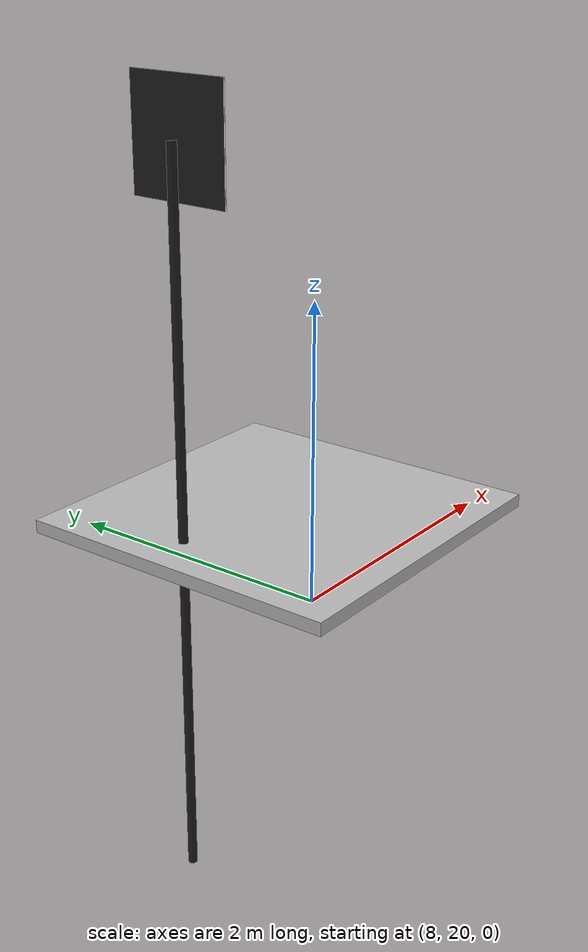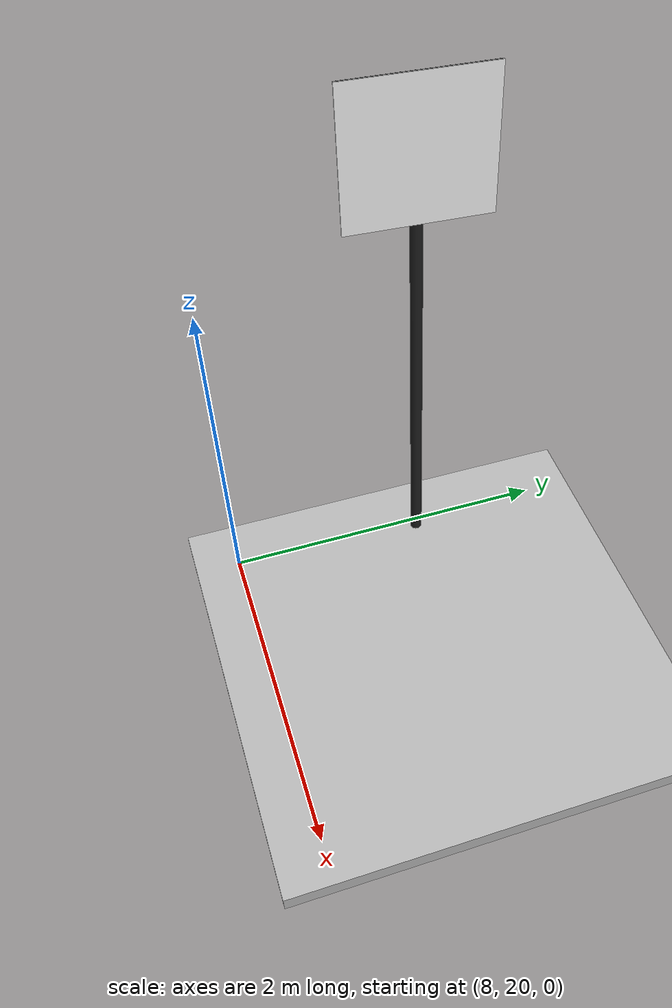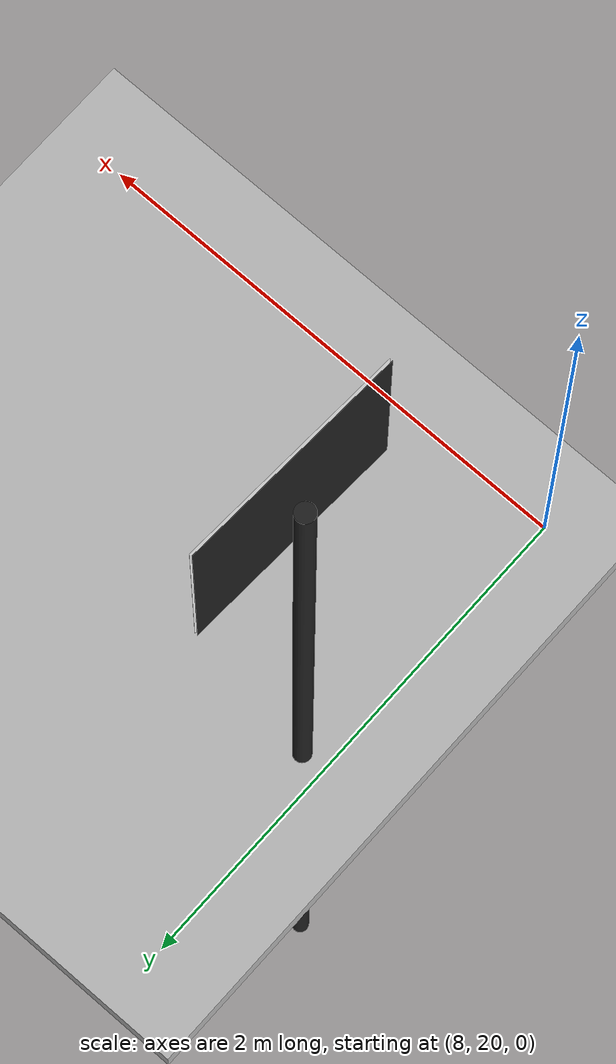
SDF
<sdf version="1.7">
 <world name="default">
  <model name="rightsign">
   <link name="link_3">
    <pose>0.1 0 2.75 0 -1.5707 0</pose>
    <inertial>
     <inertia><ixx>0</ixx><ixy>0</ixy><ixz>0</ixz><iyy>0</iyy><iyz>0</iyz><izz>0</izz></inertia>
     <mass>0</mass>
    </inertial>
    <visual name="visual">
     <pose>0 0 0 0 1.5707 0</pose>
     <geometry><box><size>0.001 0.8 0.8</size></box></geometry>
     <material>
      <script><uri>file://media/materials/scripts/turn_right.material</uri><name>turn_right/material</name></script>
      <shader type="pixel"><normal_map>__default__</normal_map></shader>
      <ambient>1 1 1 1</ambient>
      <diffuse>1 1 1 1</diffuse>
      <specular>0.03 0.03 0.03 1</specular>
      <emissive>0 0 0 1</emissive>
      <lighting>0</lighting>
     </material>
    </visual>
    <collision name="collision">
     <geometry><box><size>0.001 0.8 0.8</size></box></geometry>
     <surface>
      <friction>
       <ode><mu>1</mu><mu2>1</mu2><fdir1>0 0 0</fdir1><slip1>0</slip1><slip2>0</slip2></ode>
       <torsional>
        <coefficient>1</coefficient>
        <patch_radius>0</patch_radius>
        <surface_radius>0</surface_radius>
        <use_patch_radius>1</use_patch_radius>
        <ode><slip>0</slip></ode>
       </torsional>
      </friction>
      <bounce><restitution_coefficient>0</restitution_coefficient><threshold>1e+06</threshold></bounce>
      <contact>
       <collide_without_contact>0</collide_without_contact>
       <collide_without_contact_bitmask>1</collide_without_contact_bitmask>
       <collide_bitmask>1</collide_bitmask>
       <ode>
        <soft_cfm>0</soft_cfm>
        <soft_erp>0.2</soft_erp>
        <kp>1e+13</kp>
        <kd>1</kd>
        <max_vel>0.01</max_vel>
        <min_depth>0</min_depth>
       </ode>
       <bullet>
        <split_impulse>1</split_impulse>
        <split_impulse_penetration_threshold>-0.01</split_impulse_penetration_threshold>
        <soft_cfm>0</soft_cfm>
        <soft_erp>0.2</soft_erp>
        <kp>1e+13</kp>
        <kd>1</kd>
       </bullet>
      </contact>
     </surface>
    </collision>
   </link>
   <link name="link_0">
    <inertial>
     <mass>0.0276171</mass>
     <inertia>
      <ixx>0.0566012</ixx>
      <ixy>0</ixy>
      <ixz>0</ixz>
      <iyy>0.0566012</iyy>
      <iyz>0</iyz>
      <izz>1.919e-05</izz>
     </inertia>
    </inertial>
    <pose>0.16 0 0 0 -0 0</pose>
    <visual name="visual">
     <geometry><cylinder><radius>0.035</radius><length>5.5</length></cylinder></geometry>
     <material>
      <lighting>1</lighting>
      <script><uri>file://media/materials/scripts/gazebo.material</uri><name>Gazebo/Black</name></script>
      <shader type="pixel"><normal_map>__default__</normal_map></shader>
      <emissive>0 0 0 1</emissive>
      <ambient>0.3 0.3 0.3 1</ambient>
      <diffuse>0.7 0.7 0.7 1</diffuse>
      <specular>0.01 0.01 0.01 1</specular>
     </material>
    </visual>
    <collision name="collision">
     <geometry><cylinder><radius>0.037282</radius><length>4.95881</length></cylinder></geometry>
     <surface>
      <friction>
       <ode><mu>1</mu><mu2>1</mu2><fdir1>0 0 0</fdir1><slip1>0</slip1><slip2>0</slip2></ode>
       <torsional>
        <coefficient>1</coefficient>
        <patch_radius>0</patch_radius>
        <surface_radius>0</surface_radius>
        <use_patch_radius>1</use_patch_radius>
        <ode><slip>0</slip></ode>
       </torsional>
      </friction>
      <bounce><restitution_coefficient>0</restitution_coefficient><threshold>1e+06</threshold></bounce>
      <contact>
       <collide_without_contact>0</collide_without_contact>
       <collide_without_contact_bitmask>1</collide_without_contact_bitmask>
       <collide_bitmask>1</collide_bitmask>
       <ode>
        <soft_cfm>0</soft_cfm>
        <soft_erp>0.2</soft_erp>
        <kp>1e+13</kp>
        <kd>1</kd>
        <max_vel>0.01</max_vel>
        <min_depth>0</min_depth>
       </ode>
       <bullet>
        <split_impulse>1</split_impulse>
        <split_impulse_penetration_threshold>-0.01</split_impulse_penetration_threshold>
        <soft_cfm>0</soft_cfm>
        <soft_erp>0.2</soft_erp>
        <kp>1e+13</kp>
        <kd>1</kd>
       </bullet>
      </contact>
     </surface>
    </collision>
   </link>
   <link name="link_3_clone">
    <pose>0.110001 0 2.75 0 -1.5707 0</pose>
    <inertial>
     <inertia><ixx>0</ixx><ixy>0</ixy><ixz>0</ixz><iyy>0</iyy><iyz>0</iyz><izz>0</izz></inertia>
     <mass>0</mass>
    </inertial>
    <visual name="visual">
     <pose>0 0 0 0 1.5707 0</pose>
     <geometry><box><size>0.001 0.8 0.8</size></box></geometry>
     <material>
      <script><uri>file://media/materials/scripts/turn_right.material</uri><name>Gazebo/Black</name></script>
      <shader type="pixel"><normal_map>__default__</normal_map></shader>
      <ambient>1 1 1 1</ambient>
      <diffuse>1 1 1 1</diffuse>
      <specular>0.03 0.03 0.03 1</specular>
      <emissive>0 0 0 1</emissive>
      <lighting>0</lighting>
     </material>
    </visual>
    <collision name="collision">
     <geometry><box><size>0.001 0.8 0.8</size></box></geometry>
     <surface>
      <friction>
       <ode><mu>1</mu><mu2>1</mu2><fdir1>0 0 0</fdir1><slip1>0</slip1><slip2>0</slip2></ode>
       <torsional>
        <coefficient>1</coefficient>
        <patch_radius>0</patch_radius>
        <surface_radius>0</surface_radius>
        <use_patch_radius>1</use_patch_radius>
        <ode><slip>0</slip></ode>
       </torsional>
      </friction>
      <bounce><restitution_coefficient>0</restitution_coefficient><threshold>1e+06</threshold></bounce>
      <contact>
       <collide_without_contact>0</collide_without_contact>
       <collide_without_contact_bitmask>1</collide_without_contact_bitmask>
       <collide_bitmask>1</collide_bitmask>
       <ode>
        <soft_cfm>0</soft_cfm>
        <soft_erp>0.2</soft_erp>
        <kp>1e+13</kp>
        <kd>1</kd>
        <max_vel>0.01</max_vel>
        <min_depth>0</min_depth>
       </ode>
       <bullet>
        <split_impulse>1</split_impulse>
        <split_impulse_penetration_threshold>-0.01</split_impulse_penetration_threshold>
        <soft_cfm>0</soft_cfm>
        <soft_erp>0.2</soft_erp>
        <kp>1e+13</kp>
        <kd>1</kd>
       </bullet>
      </contact>
     </surface>
    </collision>
   </link>
   <joint name="link_0_JOINT_0" type="revolute">
    <parent>link_0</parent>
    <child>link_3</child>
    <axis>
     <xyz>1 0 0</xyz>
     <limit>
      <lower>-1.79769e+308</lower>
      <upper>1.79769e+308</upper>
      <effort>-1</effort>
      <velocity>-1</velocity>
     </limit>
     <dynamics>
      <spring_reference>0</spring_reference>
      <spring_stiffness>0</spring_stiffness>
      <damping>0</damping>
      <friction>0</friction>
     </dynamics>
    </axis>
    <physics>
     <ode><limit><cfm>0</cfm><erp>0.2</erp></limit><suspension><cfm>0</cfm><erp>0.2</erp></suspension></ode>
    </physics>
   </joint>
   <joint name="link_0_JOINT_1" type="revolute">
    <parent>link_0</parent>
    <child>link_3_clone</child>
    <axis>
     <xyz>1 0 0</xyz>
     <limit>
      <lower>-1.79769e+308</lower>
      <upper>1.79769e+308</upper>
      <effort>-1</effort>
      <velocity>-1</velocity>
     </limit>
     <dynamics>
      <spring_reference>0</spring_reference>
      <spring_stiffness>0</spring_stiffness>
      <damping>0</damping>
      <friction>0</friction>
     </dynamics>
    </axis>
    <physics>
     <ode><limit><cfm>0</cfm><erp>0.2</erp></limit><suspension><cfm>0</cfm><erp>0.2</erp></suspension></ode>
    </physics>
   </joint>
   <joint name="link_3_JOINT_0" type="revolute">
    <parent>link_3</parent>
    <child>link_3_clone</child>
    <axis>
     <xyz>1 0 0</xyz>
     <limit>
      <lower>-1.79769e+308</lower>
      <upper>1.79769e+308</upper>
      <effort>-1</effort>
      <velocity>-1</velocity>
     </limit>
     <dynamics>
      <spring_reference>0</spring_reference>
      <spring_stiffness>0</spring_stiffness>
      <damping>0</damping>
      <friction>0</friction>
     </dynamics>
    </axis>
    <physics>
     <ode><limit><cfm>0</cfm><erp>0.2</erp></limit><suspension><cfm>0</cfm><erp>0.2</erp></suspension></ode>
    </physics>
   </joint>
   <static>1</static>
   <pose>8.24889 21.1705 0.05992 0 -0 3.09267</pose>
  </model>
  <model name="ground">
   <link name="ground">
    <inertial>
     <mass>1</mass>
     <inertia><ixx>1</ixx><ixy>0</ixy><ixz>0</ixz><iyy>1</iyy><iyz>0</iyz><izz>1</izz></inertia>
    </inertial>
    <visual name="visual">
     <geometry><box><size>56.5 45.2 0.1</size></box></geometry>
     <material>
      <script><uri>file://media/materials/scripts/map.material</uri><name>map/material</name></script>
      <shader type="pixel"><normal_map>__default__</normal_map></shader>
      <lighting>0</lighting>
     </material>
    </visual>
    <collision name="collision">
     <geometry><box><size>56.5 45.2 0.1</size></box></geometry>
     <surface>
      <friction>
       <ode><mu>1</mu><mu2>1</mu2><fdir1>0 0 0</fdir1><slip1>0</slip1><slip2>0</slip2></ode>
       <torsional>
        <coefficient>1</coefficient>
        <patch_radius>0</patch_radius>
        <surface_radius>0</surface_radius>
        <use_patch_radius>1</use_patch_radius>
        <ode><slip>0</slip></ode>
       </torsional>
      </friction>
      <bounce><restitution_coefficient>0</restitution_coefficient><threshold>1e+06</threshold></bounce>
      <contact>
       <collide_without_contact>0</collide_without_contact>
       <collide_without_contact_bitmask>1</collide_without_contact_bitmask>
       <collide_bitmask>1</collide_bitmask>
       <ode>
        <soft_cfm>0</soft_cfm>
        <soft_erp>0.2</soft_erp>
        <kp>1e+13</kp>
        <kd>1</kd>
        <max_vel>0.01</max_vel>
        <min_depth>0</min_depth>
       </ode>
       <bullet>
        <split_impulse>1</split_impulse>
        <split_impulse_penetration_threshold>-0.01</split_impulse_penetration_threshold>
        <soft_cfm>0</soft_cfm>
        <soft_erp>0.2</soft_erp>
        <kp>1e+13</kp>
        <kd>1</kd>
       </bullet>
      </contact>
     </surface>
    </collision>
   </link>
   <static>1</static>
   <pose>19 24.5 0 0 -0 1.5707</pose>
  </model>
 </world>
</sdf>
